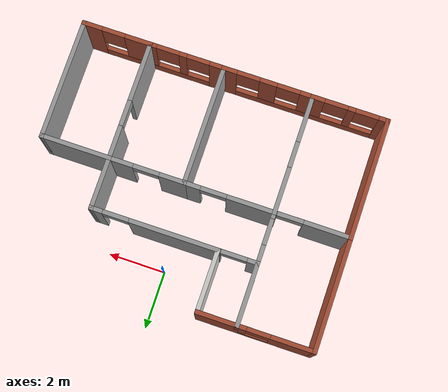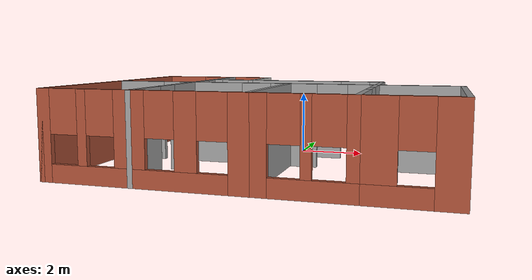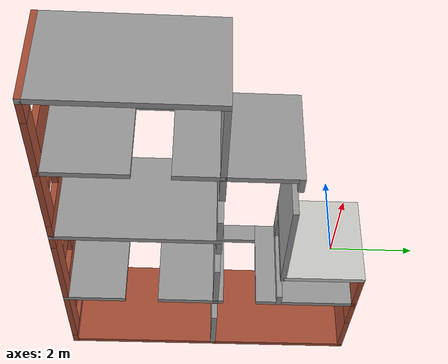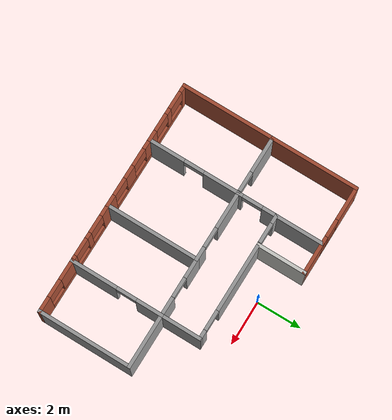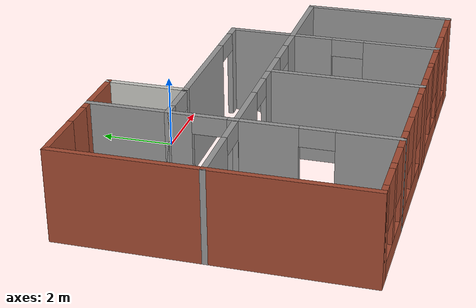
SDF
<?xml version='1.0'?>
<sdf version='1.6'>
  <model name='appartment'>
    <pose frame=''>-0.212064 -2.89317 0 0 -0 0</pose>
    <link name='Wall_0'>
      <collision name='Wall_0_Collision'>
        <geometry>
          <box>
            <size>4.25 0.15 2.5</size>
          </box>
        </geometry>
        <pose frame=''>0 0 1.25 0 -0 0</pose>
      </collision>
      <visual name='Wall_0_Visual'>
        <pose frame=''>0 0 1.25 0 -0 0</pose>
        <geometry>
          <box>
            <size>4.25 0.15 2.5</size>
          </box>
        </geometry>
        <material>
          <script>
            <uri>file://media/materials/scripts/gazebo.material</uri>
            <name>Gazebo/Bricks</name>
          </script>
          <ambient>1 1 1 1</ambient>
        </material>
        <meta>
          <layer>0</layer>
        </meta>
      </visual>
      <pose frame=''>-5.325 -1.925 0 0 0 -1.5708</pose>
    </link>
    <link name='Wall_1'>
      <pose frame=''>-4.025 -3.975 0 0 -0 0</pose>
      <visual name='Wall_1_Visual_0'>
        <pose frame=''>-1.18356 0 1.25 0 -0 0</pose>
        <geometry>
          <box>
            <size>0.382875 0.15 2.5</size>
          </box>
        </geometry>
        <material>
          <script>
            <uri>file://media/materials/scripts/gazebo.material</uri>
            <name>Gazebo/Bricks</name>
          </script>
          <ambient>1 1 1 1</ambient>
        </material>
        <meta>
          <layer>0</layer>
        </meta>
      </visual>
      <collision name='Wall_1_Collision_0'>
        <geometry>
          <box>
            <size>0.382875 0.15 2.5</size>
          </box>
        </geometry>
        <pose frame=''>-1.18356 0 1.25 0 -0 0</pose>
      </collision>
      <visual name='Wall_1_Visual_1'>
        <pose frame=''>0.191437 0 0.25 0 -0 0</pose>
        <geometry>
          <box>
            <size>2.36713 0.15 0.5</size>
          </box>
        </geometry>
        <material>
          <script>
            <uri>file://media/materials/scripts/gazebo.material</uri>
            <name>Gazebo/Bricks</name>
          </script>
          <ambient>1 1 1 1</ambient>
        </material>
        <meta>
          <layer>0</layer>
        </meta>
      </visual>
      <collision name='Wall_1_Collision_1'>
        <geometry>
          <box>
            <size>2.36713 0.15 0.5</size>
          </box>
        </geometry>
        <pose frame=''>0.191437 0 0.25 0 -0 0</pose>
      </collision>
      <visual name='Wall_1_Visual_2'>
        <pose frame=''>-0.058679 0 1.5 0 -0 0</pose>
        <geometry>
          <box>
            <size>0.266894 0.15 2</size>
          </box>
        </geometry>
        <material>
          <script>
            <uri>file://media/materials/scripts/gazebo.material</uri>
            <name>Gazebo/Bricks</name>
          </script>
          <ambient>1 1 1 1</ambient>
        </material>
        <meta>
          <layer>0</layer>
        </meta>
      </visual>
      <collision name='Wall_1_Collision_2'>
        <geometry>
          <box>
            <size>0.266894 0.15 2</size>
          </box>
        </geometry>
        <pose frame=''>-0.058679 0 1.5 0 -0 0</pose>
      </collision>
      <visual name='Wall_1_Visual_3'>
        <pose frame=''>1.12488 0 1.5 0 -0 0</pose>
        <geometry>
          <box>
            <size>0.500232 0.15 2</size>
          </box>
        </geometry>
        <material>
          <script>
            <uri>file://media/materials/scripts/gazebo.material</uri>
            <name>Gazebo/Bricks</name>
          </script>
          <ambient>1 1 1 1</ambient>
        </material>
        <meta>
          <layer>0</layer>
        </meta>
      </visual>
      <collision name='Wall_1_Collision_3'>
        <geometry>
          <box>
            <size>0.500232 0.15 2</size>
          </box>
        </geometry>
        <pose frame=''>1.12488 0 1.5 0 -0 0</pose>
      </collision>
      <visual name='Wall_1_Visual_4'>
        <pose frame=''>-0.592125 0 1.9 0 -0 0</pose>
        <geometry>
          <box>
            <size>0.8 0.15 1.2</size>
          </box>
        </geometry>
        <material>
          <script>
            <uri>file://media/materials/scripts/gazebo.material</uri>
            <name>Gazebo/Bricks</name>
          </script>
          <ambient>1 1 1 1</ambient>
        </material>
        <meta>
          <layer>0</layer>
        </meta>
      </visual>
      <collision name='Wall_1_Collision_4'>
        <geometry>
          <box>
            <size>0.8 0.15 1.2</size>
          </box>
        </geometry>
        <pose frame=''>-0.592125 0 1.9 0 -0 0</pose>
      </collision>
      <visual name='Wall_1_Visual_5'>
        <pose frame=''>0.474768 0 1.9 0 -0 0</pose>
        <geometry>
          <box>
            <size>0.8 0.15 1.2</size>
          </box>
        </geometry>
        <material>
          <script>
            <uri>file://media/materials/scripts/gazebo.material</uri>
            <name>Gazebo/Bricks</name>
          </script>
          <ambient>1 1 1 1</ambient>
        </material>
        <meta>
          <layer>0</layer>
        </meta>
      </visual>
      <collision name='Wall_1_Collision_5'>
        <geometry>
          <box>
            <size>0.8 0.15 1.2</size>
          </box>
        </geometry>
        <pose frame=''>0.474768 0 1.9 0 -0 0</pose>
      </collision>
    </link>
    <link name='Wall_11'>
      <pose frame=''>1.675 -3.975 0 0 -0 0</pose>
      <visual name='Wall_11_Visual_0'>
        <pose frame=''>-1.08649 0 1.25 0 -0 0</pose>
        <geometry>
          <box>
            <size>0.577026 0.15 2.5</size>
          </box>
        </geometry>
        <material>
          <script>
            <uri>file://media/materials/scripts/gazebo.material</uri>
            <name>Gazebo/Bricks</name>
          </script>
          <ambient>1 1 1 1</ambient>
        </material>
        <meta>
          <layer>0</layer>
        </meta>
      </visual>
      <collision name='Wall_11_Collision_0'>
        <geometry>
          <box>
            <size>0.577026 0.15 2.5</size>
          </box>
        </geometry>
        <pose frame=''>-1.08649 0 1.25 0 -0 0</pose>
      </collision>
      <visual name='Wall_11_Visual_1'>
        <pose frame=''>0.288513 0 0.25 0 -0 0</pose>
        <geometry>
          <box>
            <size>2.17297 0.15 0.5</size>
          </box>
        </geometry>
        <material>
          <script>
            <uri>file://media/materials/scripts/gazebo.material</uri>
            <name>Gazebo/Bricks</name>
          </script>
          <ambient>1 1 1 1</ambient>
        </material>
        <meta>
          <layer>0</layer>
        </meta>
      </visual>
      <collision name='Wall_11_Collision_1'>
        <geometry>
          <box>
            <size>2.17297 0.15 0.5</size>
          </box>
        </geometry>
        <pose frame=''>0.288513 0 0.25 0 -0 0</pose>
      </collision>
      <visual name='Wall_11_Visual_2'>
        <pose frame=''>0.135473 0 1.5 0 -0 0</pose>
        <geometry>
          <box>
            <size>0.266894 0.15 2</size>
          </box>
        </geometry>
        <material>
          <script>
            <uri>file://media/materials/scripts/gazebo.material</uri>
            <name>Gazebo/Bricks</name>
          </script>
          <ambient>1 1 1 1</ambient>
        </material>
        <meta>
          <layer>0</layer>
        </meta>
      </visual>
      <collision name='Wall_11_Collision_2'>
        <geometry>
          <box>
            <size>0.266894 0.15 2</size>
          </box>
        </geometry>
        <pose frame=''>0.135473 0 1.5 0 -0 0</pose>
      </collision>
      <visual name='Wall_11_Visual_3'>
        <pose frame=''>1.22196 0 1.5 0 -0 0</pose>
        <geometry>
          <box>
            <size>0.306081 0.15 2</size>
          </box>
        </geometry>
        <material>
          <script>
            <uri>file://media/materials/scripts/gazebo.material</uri>
            <name>Gazebo/Bricks</name>
          </script>
          <ambient>1 1 1 1</ambient>
        </material>
        <meta>
          <layer>0</layer>
        </meta>
      </visual>
      <collision name='Wall_11_Collision_3'>
        <geometry>
          <box>
            <size>0.306081 0.15 2</size>
          </box>
        </geometry>
        <pose frame=''>1.22196 0 1.5 0 -0 0</pose>
      </collision>
      <visual name='Wall_11_Visual_4'>
        <pose frame=''>-0.397974 0 1.9 0 -0 0</pose>
        <geometry>
          <box>
            <size>0.8 0.15 1.2</size>
          </box>
        </geometry>
        <material>
          <script>
            <uri>file://media/materials/scripts/gazebo.material</uri>
            <name>Gazebo/Bricks</name>
          </script>
          <ambient>1 1 1 1</ambient>
        </material>
        <meta>
          <layer>0</layer>
        </meta>
      </visual>
      <collision name='Wall_11_Collision_4'>
        <geometry>
          <box>
            <size>0.8 0.15 1.2</size>
          </box>
        </geometry>
        <pose frame=''>-0.397974 0 1.9 0 -0 0</pose>
      </collision>
      <visual name='Wall_11_Visual_5'>
        <pose frame=''>0.668919 0 1.9 0 -0 0</pose>
        <geometry>
          <box>
            <size>0.8 0.15 1.2</size>
          </box>
        </geometry>
        <material>
          <script>
            <uri>file://media/materials/scripts/gazebo.material</uri>
            <name>Gazebo/Bricks</name>
          </script>
          <ambient>1 1 1 1</ambient>
        </material>
        <meta>
          <layer>0</layer>
        </meta>
      </visual>
      <collision name='Wall_11_Collision_5'>
        <geometry>
          <box>
            <size>0.8 0.15 1.2</size>
          </box>
        </geometry>
        <pose frame=''>0.668919 0 1.9 0 -0 0</pose>
      </collision>
    </link>
    <link name='Wall_13'>
      <pose frame=''>2.975 -1.925 0 0 -0 1.5708</pose>
      <visual name='Wall_13_Visual_0'>
        <pose frame=''>-1.06041 0 1.25 0 -0 0</pose>
        <geometry>
          <box>
            <size>2.12917 0.15 2.5</size>
          </box>
        </geometry>
        <material>
          <script>
            <uri>file://media/materials/scripts/gazebo.material</uri>
            <name>Gazebo/Grey</name>
          </script>
          <ambient>1 1 1 1</ambient>
        </material>
        <meta>
          <layer>0</layer>
        </meta>
      </visual>
      <collision name='Wall_13_Collision_0'>
        <geometry>
          <box>
            <size>2.12917 0.15 2.5</size>
          </box>
        </geometry>
        <pose frame=''>-1.06041 0 1.25 0 -0 0</pose>
      </collision>
      <visual name='Wall_13_Visual_1'>
        <pose frame=''>1.51459 0 1.25 0 -0 0</pose>
        <geometry>
          <box>
            <size>1.22083 0.15 2.5</size>
          </box>
        </geometry>
        <material>
          <script>
            <uri>file://media/materials/scripts/gazebo.material</uri>
            <name>Gazebo/Grey</name>
          </script>
          <ambient>1 1 1 1</ambient>
        </material>
        <meta>
          <layer>0</layer>
        </meta>
      </visual>
      <collision name='Wall_13_Collision_1'>
        <geometry>
          <box>
            <size>1.22083 0.15 2.5</size>
          </box>
        </geometry>
        <pose frame=''>1.51459 0 1.25 0 -0 0</pose>
      </collision>
      <visual name='Wall_13_Visual_2'>
        <pose frame=''>0.454172 0 2.25 0 -0 0</pose>
        <geometry>
          <box>
            <size>0.9 0.15 0.5</size>
          </box>
        </geometry>
        <material>
          <script>
            <uri>file://media/materials/scripts/gazebo.material</uri>
            <name>Gazebo/Grey</name>
          </script>
          <ambient>1 1 1 1</ambient>
        </material>
        <meta>
          <layer>0</layer>
        </meta>
      </visual>
      <collision name='Wall_13_Collision_2'>
        <geometry>
          <box>
            <size>0.9 0.15 0.5</size>
          </box>
        </geometry>
        <pose frame=''>0.454172 0 2.25 0 -0 0</pose>
      </collision>
    </link>
    <link name='Wall_14'>
      <pose frame=''>1.675 0.125 0 0 -0 3.14159</pose>
      <visual name='Wall_14_Visual_0'>
        <pose frame=''>-0.921019 0 1.25 0 -0 0</pose>
        <geometry>
          <box>
            <size>0.907962 0.15 2.5</size>
          </box>
        </geometry>
        <material>
          <script>
            <uri>file://media/materials/scripts/gazebo.material</uri>
            <name>Gazebo/Grey</name>
          </script>
          <ambient>1 1 1 1</ambient>
        </material>
        <meta>
          <layer>0</layer>
        </meta>
      </visual>
      <collision name='Wall_14_Collision_0'>
        <geometry>
          <box>
            <size>0.907962 0.15 2.5</size>
          </box>
        </geometry>
        <pose frame=''>-0.921019 0 1.25 0 -0 0</pose>
      </collision>
      <visual name='Wall_14_Visual_1'>
        <pose frame=''>0.903981 0 1.25 0 -0 0</pose>
        <geometry>
          <box>
            <size>0.942038 0.15 2.5</size>
          </box>
        </geometry>
        <material>
          <script>
            <uri>file://media/materials/scripts/gazebo.material</uri>
            <name>Gazebo/Grey</name>
          </script>
          <ambient>1 1 1 1</ambient>
        </material>
        <meta>
          <layer>0</layer>
        </meta>
      </visual>
      <collision name='Wall_14_Collision_1'>
        <geometry>
          <box>
            <size>0.942038 0.15 2.5</size>
          </box>
        </geometry>
        <pose frame=''>0.903981 0 1.25 0 -0 0</pose>
      </collision>
      <visual name='Wall_14_Visual_2'>
        <pose frame=''>-0.017038 0 2.25 0 -0 0</pose>
        <geometry>
          <box>
            <size>0.9 0.15 0.5</size>
          </box>
        </geometry>
        <material>
          <script>
            <uri>file://media/materials/scripts/gazebo.material</uri>
            <name>Gazebo/Grey</name>
          </script>
          <ambient>1 1 1 1</ambient>
        </material>
        <meta>
          <layer>0</layer>
        </meta>
      </visual>
      <collision name='Wall_14_Collision_2'>
        <geometry>
          <box>
            <size>0.9 0.15 0.5</size>
          </box>
        </geometry>
        <pose frame=''>-0.017038 0 2.25 0 -0 0</pose>
      </collision>
    </link>
    <link name='Wall_16'>
      <collision name='Wall_16_Collision'>
        <geometry>
          <box>
            <size>2.5 0.15 2.5</size>
          </box>
        </geometry>
        <pose frame=''>0 0 1.25 0 -0 0</pose>
      </collision>
      <visual name='Wall_16_Visual'>
        <pose frame=''>0 0 1.25 0 -0 0</pose>
        <geometry>
          <box>
            <size>2.5 0.15 2.5</size>
          </box>
        </geometry>
        <material>
          <script>
            <uri>file://media/materials/scripts/gazebo.material</uri>
            <name>Gazebo/Grey</name>
          </script>
          <ambient>1 1 1 1</ambient>
        </material>
        <meta>
          <layer>0</layer>
        </meta>
      </visual>
      <pose frame=''>4.15 0.125 0 0 -0 0</pose>
    </link>
    <link name='Wall_17'>
      <collision name='Wall_17_Collision'>
        <geometry>
          <box>
            <size>4.25 0.15 2.5</size>
          </box>
        </geometry>
        <pose frame=''>0 0 1.25 0 -0 0</pose>
      </collision>
      <visual name='Wall_17_Visual'>
        <pose frame=''>0 0 1.25 0 -0 0</pose>
        <geometry>
          <box>
            <size>4.25 0.15 2.5</size>
          </box>
        </geometry>
        <material>
          <script>
            <uri>file://media/materials/scripts/gazebo.material</uri>
            <name>Gazebo/Grey</name>
          </script>
          <ambient>1 1 1 1</ambient>
        </material>
        <meta>
          <layer>0</layer>
        </meta>
      </visual>
      <pose frame=''>5.325 -1.925 0 0 0 -1.5708</pose>
    </link>
    <link name='Wall_18'>
      <pose frame=''>4.15 -3.975 0 0 -0 3.14159</pose>
      <visual name='Wall_18_Visual_0'>
        <pose frame=''>-0.883913 0 1.25 0 -0 0</pose>
        <geometry>
          <box>
            <size>0.732174 0.15 2.5</size>
          </box>
        </geometry>
        <material>
          <script>
            <uri>file://media/materials/scripts/gazebo.material</uri>
            <name>Gazebo/Bricks</name>
          </script>
          <ambient>1 1 1 1</ambient>
        </material>
        <meta>
          <layer>0</layer>
        </meta>
      </visual>
      <collision name='Wall_18_Collision_0'>
        <geometry>
          <box>
            <size>0.732174 0.15 2.5</size>
          </box>
        </geometry>
        <pose frame=''>-0.883913 0 1.25 0 -0 0</pose>
      </collision>
      <visual name='Wall_18_Visual_1'>
        <pose frame=''>0.366087 0 0.25 0 -0 0</pose>
        <geometry>
          <box>
            <size>1.76783 0.15 0.5</size>
          </box>
        </geometry>
        <material>
          <script>
            <uri>file://media/materials/scripts/gazebo.material</uri>
            <name>Gazebo/Bricks</name>
          </script>
          <ambient>1 1 1 1</ambient>
        </material>
        <meta>
          <layer>0</layer>
        </meta>
      </visual>
      <collision name='Wall_18_Collision_1'>
        <geometry>
          <box>
            <size>1.76783 0.15 0.5</size>
          </box>
        </geometry>
        <pose frame=''>0.366087 0 0.25 0 -0 0</pose>
      </collision>
      <visual name='Wall_18_Visual_2'>
        <pose frame=''>0.766087 0 1.5 0 -0 0</pose>
        <geometry>
          <box>
            <size>0.967826 0.15 2</size>
          </box>
        </geometry>
        <material>
          <script>
            <uri>file://media/materials/scripts/gazebo.material</uri>
            <name>Gazebo/Bricks</name>
          </script>
          <ambient>1 1 1 1</ambient>
        </material>
        <meta>
          <layer>0</layer>
        </meta>
      </visual>
      <collision name='Wall_18_Collision_2'>
        <geometry>
          <box>
            <size>0.967826 0.15 2</size>
          </box>
        </geometry>
        <pose frame=''>0.766087 0 1.5 0 -0 0</pose>
      </collision>
      <visual name='Wall_18_Visual_3'>
        <pose frame=''>-0.117826 0 1.9 0 -0 0</pose>
        <geometry>
          <box>
            <size>0.8 0.15 1.2</size>
          </box>
        </geometry>
        <material>
          <script>
            <uri>file://media/materials/scripts/gazebo.material</uri>
            <name>Gazebo/Bricks</name>
          </script>
          <ambient>1 1 1 1</ambient>
        </material>
        <meta>
          <layer>0</layer>
        </meta>
      </visual>
      <collision name='Wall_18_Collision_3'>
        <geometry>
          <box>
            <size>0.8 0.15 1.2</size>
          </box>
        </geometry>
        <pose frame=''>-0.117826 0 1.9 0 -0 0</pose>
      </collision>
    </link>
    <link name='Wall_2'>
      <pose frame=''>-2.725 -1.925 0 0 -0 1.5708</pose>
      <visual name='Wall_2_Visual_0'>
        <pose frame=''>-1.27862 0 1.25 0 -0 0</pose>
        <geometry>
          <box>
            <size>1.69277 0.15 2.5</size>
          </box>
        </geometry>
        <material>
          <script>
            <uri>file://media/materials/scripts/gazebo.material</uri>
            <name>Gazebo/Grey</name>
          </script>
          <ambient>1 1 1 1</ambient>
        </material>
        <meta>
          <layer>0</layer>
        </meta>
      </visual>
      <collision name='Wall_2_Collision_0'>
        <geometry>
          <box>
            <size>1.69277 0.15 2.5</size>
          </box>
        </geometry>
        <pose frame=''>-1.27862 0 1.25 0 -0 0</pose>
      </collision>
      <visual name='Wall_2_Visual_1'>
        <pose frame=''>1.29638 0 1.25 0 -0 0</pose>
        <geometry>
          <box>
            <size>1.65723 0.15 2.5</size>
          </box>
        </geometry>
        <material>
          <script>
            <uri>file://media/materials/scripts/gazebo.material</uri>
            <name>Gazebo/Grey</name>
          </script>
          <ambient>1 1 1 1</ambient>
        </material>
        <meta>
          <layer>0</layer>
        </meta>
      </visual>
      <collision name='Wall_2_Collision_1'>
        <geometry>
          <box>
            <size>1.65723 0.15 2.5</size>
          </box>
        </geometry>
        <pose frame=''>1.29638 0 1.25 0 -0 0</pose>
      </collision>
      <visual name='Wall_2_Visual_2'>
        <pose frame=''>0.017769 0 2.25 0 -0 0</pose>
        <geometry>
          <box>
            <size>0.9 0.15 0.5</size>
          </box>
        </geometry>
        <material>
          <script>
            <uri>file://media/materials/scripts/gazebo.material</uri>
            <name>Gazebo/Grey</name>
          </script>
          <ambient>1 1 1 1</ambient>
        </material>
        <meta>
          <layer>0</layer>
        </meta>
      </visual>
      <collision name='Wall_2_Collision_2'>
        <geometry>
          <box>
            <size>0.9 0.15 0.5</size>
          </box>
        </geometry>
        <pose frame=''>0.017769 0 2.25 0 -0 0</pose>
      </collision>
    </link>
    <link name='Wall_20'>
      <collision name='Wall_20_Collision'>
        <geometry>
          <box>
            <size>1.5 0.15 2.5</size>
          </box>
        </geometry>
        <pose frame=''>0 0 1.25 0 -0 0</pose>
      </collision>
      <visual name='Wall_20_Visual'>
        <pose frame=''>0 0 1.25 0 -0 0</pose>
        <geometry>
          <box>
            <size>1.5 0.15 2.5</size>
          </box>
        </geometry>
        <material>
          <script>
            <uri>file://media/materials/scripts/gazebo.material</uri>
            <name>Gazebo/Bricks</name>
          </script>
          <ambient>1 1 1 1</ambient>
        </material>
        <meta>
          <layer>0</layer>
        </meta>
      </visual>
      <pose frame=''>-2.05 3.975 0 0 -0 0</pose>
    </link>
    <link name='Wall_21'>
      <collision name='Wall_21_Collision'>
        <geometry>
          <box>
            <size>2.25 0.15 2.5</size>
          </box>
        </geometry>
        <pose frame=''>0 0 1.25 0 -0 0</pose>
      </collision>
      <visual name='Wall_21_Visual'>
        <pose frame=''>0 0 1.25 0 -0 0</pose>
        <geometry>
          <box>
            <size>2.25 0.15 2.5</size>
          </box>
        </geometry>
        <material>
          <script>
            <uri>file://media/materials/scripts/gazebo.material</uri>
            <name>Gazebo/CeilingTiled</name>
          </script>
          <ambient>1 1 1 1</ambient>
        </material>
        <meta>
          <layer>0</layer>
        </meta>
      </visual>
      <pose frame=''>-1.375 2.925 0 0 0 -1.5708</pose>
    </link>
    <link name='Wall_28'>
      <pose frame=''>0.8 1.875 0 0 -0 0</pose>
      <visual name='Wall_28_Visual_0'>
        <pose frame=''>-0.685769 0 1.25 0 -0 0</pose>
        <geometry>
          <box>
            <size>3.12846 0.15 2.5</size>
          </box>
        </geometry>
        <material>
          <script>
            <uri>file://media/materials/scripts/gazebo.material</uri>
            <name>Gazebo/Grey</name>
          </script>
          <ambient>1 1 1 1</ambient>
        </material>
        <meta>
          <layer>0</layer>
        </meta>
      </visual>
      <collision name='Wall_28_Collision_0'>
        <geometry>
          <box>
            <size>3.12846 0.15 2.5</size>
          </box>
        </geometry>
        <pose frame=''>-0.685769 0 1.25 0 -0 0</pose>
      </collision>
      <visual name='Wall_28_Visual_1'>
        <pose frame=''>2.01423 0 1.25 0 -0 0</pose>
        <geometry>
          <box>
            <size>0.471537 0.15 2.5</size>
          </box>
        </geometry>
        <material>
          <script>
            <uri>file://media/materials/scripts/gazebo.material</uri>
            <name>Gazebo/Grey</name>
          </script>
          <ambient>1 1 1 1</ambient>
        </material>
        <meta>
          <layer>0</layer>
        </meta>
      </visual>
      <collision name='Wall_28_Collision_1'>
        <geometry>
          <box>
            <size>0.471537 0.15 2.5</size>
          </box>
        </geometry>
        <pose frame=''>2.01423 0 1.25 0 -0 0</pose>
      </collision>
      <visual name='Wall_28_Visual_2'>
        <pose frame=''>1.32846 0 2.25 0 -0 0</pose>
        <geometry>
          <box>
            <size>0.9 0.15 0.5</size>
          </box>
        </geometry>
        <material>
          <script>
            <uri>file://media/materials/scripts/gazebo.material</uri>
            <name>Gazebo/Grey</name>
          </script>
          <ambient>1 1 1 1</ambient>
        </material>
        <meta>
          <layer>0</layer>
        </meta>
      </visual>
      <collision name='Wall_28_Collision_2'>
        <geometry>
          <box>
            <size>0.9 0.15 0.5</size>
          </box>
        </geometry>
        <pose frame=''>1.32846 0 2.25 0 -0 0</pose>
      </collision>
    </link>
    <link name='Wall_29'>
      <collision name='Wall_29_Collision'>
        <geometry>
          <box>
            <size>1.9 0.15 2.5</size>
          </box>
        </geometry>
        <pose frame=''>0 0 1.25 0 -0 0</pose>
      </collision>
      <visual name='Wall_29_Visual'>
        <pose frame=''>0 0 1.25 0 -0 0</pose>
        <geometry>
          <box>
            <size>1.9 0.15 2.5</size>
          </box>
        </geometry>
        <material>
          <script>
            <uri>file://media/materials/scripts/gazebo.material</uri>
            <name>Gazebo/Grey</name>
          </script>
          <ambient>1 1 1 1</ambient>
        </material>
        <meta>
          <layer>0</layer>
        </meta>
      </visual>
      <pose frame=''>2.975 1 0 0 0 -1.5708</pose>
    </link>
    <link name='Wall_3'>
      <pose frame=''>-4.025 0.125 0 0 -0 3.14159</pose>
      <visual name='Wall_3_Visual_0'>
        <pose frame=''>-1.29133 0 1.25 0 -0 0</pose>
        <geometry>
          <box>
            <size>0.167337 0.15 2.5</size>
          </box>
        </geometry>
        <material>
          <script>
            <uri>file://media/materials/scripts/gazebo.material</uri>
            <name>Gazebo/Grey</name>
          </script>
          <ambient>1 1 1 1</ambient>
        </material>
        <meta>
          <layer>0</layer>
        </meta>
      </visual>
      <collision name='Wall_3_Collision_0'>
        <geometry>
          <box>
            <size>0.167337 0.15 2.5</size>
          </box>
        </geometry>
        <pose frame=''>-1.29133 0 1.25 0 -0 0</pose>
      </collision>
      <visual name='Wall_3_Visual_1'>
        <pose frame=''>0.533669 0 1.25 0 -0 0</pose>
        <geometry>
          <box>
            <size>1.68266 0.15 2.5</size>
          </box>
        </geometry>
        <material>
          <script>
            <uri>file://media/materials/scripts/gazebo.material</uri>
            <name>Gazebo/Grey</name>
          </script>
          <ambient>1 1 1 1</ambient>
        </material>
        <meta>
          <layer>0</layer>
        </meta>
      </visual>
      <collision name='Wall_3_Collision_1'>
        <geometry>
          <box>
            <size>1.68266 0.15 2.5</size>
          </box>
        </geometry>
        <pose frame=''>0.533669 0 1.25 0 -0 0</pose>
      </collision>
      <visual name='Wall_3_Visual_2'>
        <pose frame=''>-0.757663 0 2.25 0 -0 0</pose>
        <geometry>
          <box>
            <size>0.9 0.15 0.5</size>
          </box>
        </geometry>
        <material>
          <script>
            <uri>file://media/materials/scripts/gazebo.material</uri>
            <name>Gazebo/Grey</name>
          </script>
          <ambient>1 1 1 1</ambient>
        </material>
        <meta>
          <layer>0</layer>
        </meta>
      </visual>
      <collision name='Wall_3_Collision_2'>
        <geometry>
          <box>
            <size>0.9 0.15 0.5</size>
          </box>
        </geometry>
        <pose frame=''>-0.757663 0 2.25 0 -0 0</pose>
      </collision>
    </link>
    <link name='Wall_31'>
      <pose frame=''>-2.05 1.875 0 0 -0 3.14159</pose>
      <visual name='Wall_31_Visual_0'>
        <pose frame=''>-0.663172 0 1.25 0 -0 0</pose>
        <geometry>
          <box>
            <size>0.173656 0.15 2.5</size>
          </box>
        </geometry>
        <material>
          <script>
            <uri>file://media/materials/scripts/gazebo.material</uri>
            <name>Gazebo/Grey</name>
          </script>
          <ambient>1 1 1 1</ambient>
        </material>
        <meta>
          <layer>0</layer>
        </meta>
      </visual>
      <collision name='Wall_31_Collision_0'>
        <geometry>
          <box>
            <size>0.173656 0.15 2.5</size>
          </box>
        </geometry>
        <pose frame=''>-0.663172 0 1.25 0 -0 0</pose>
      </collision>
      <visual name='Wall_31_Visual_1'>
        <pose frame=''>0.536828 0 1.25 0 -0 0</pose>
        <geometry>
          <box>
            <size>0.426344 0.15 2.5</size>
          </box>
        </geometry>
        <material>
          <script>
            <uri>file://media/materials/scripts/gazebo.material</uri>
            <name>Gazebo/Grey</name>
          </script>
          <ambient>1 1 1 1</ambient>
        </material>
        <meta>
          <layer>0</layer>
        </meta>
      </visual>
      <collision name='Wall_31_Collision_1'>
        <geometry>
          <box>
            <size>0.426344 0.15 2.5</size>
          </box>
        </geometry>
        <pose frame=''>0.536828 0 1.25 0 -0 0</pose>
      </collision>
      <visual name='Wall_31_Visual_2'>
        <pose frame=''>-0.126344 0 2.25 0 -0 0</pose>
        <geometry>
          <box>
            <size>0.9 0.15 0.5</size>
          </box>
        </geometry>
        <material>
          <script>
            <uri>file://media/materials/scripts/gazebo.material</uri>
            <name>Gazebo/Grey</name>
          </script>
          <ambient>1 1 1 1</ambient>
        </material>
        <meta>
          <layer>0</layer>
        </meta>
      </visual>
      <collision name='Wall_31_Collision_2'>
        <geometry>
          <box>
            <size>0.9 0.15 0.5</size>
          </box>
        </geometry>
        <pose frame=''>-0.126344 0 2.25 0 -0 0</pose>
      </collision>
    </link>
    <link name='Wall_4'>
      <collision name='Wall_4_Collision'>
        <geometry>
          <box>
            <size>4 0.15 2.5</size>
          </box>
        </geometry>
        <pose frame=''>0 0 1.25 0 -0 0</pose>
      </collision>
      <visual name='Wall_4_Visual'>
        <pose frame=''>0 0 1.25 0 -0 0</pose>
        <geometry>
          <box>
            <size>4 0.15 2.5</size>
          </box>
        </geometry>
        <material>
          <script>
            <uri>file://media/materials/scripts/gazebo.material</uri>
            <name>Gazebo/Bricks</name>
          </script>
          <ambient>1 1 1 1</ambient>
        </material>
        <meta>
          <layer>0</layer>
        </meta>
      </visual>
      <pose frame=''>-5.325 2.05 0 0 -0 1.5708</pose>
    </link>
    <link name='Wall_5'>
      <pose frame=''>-4.025 3.975 0 0 -0 0</pose>
      <visual name='Wall_5_Visual_0'>
        <pose frame=''>-0.597646 0 1.25 0 -0 0</pose>
        <geometry>
          <box>
            <size>1.55471 0.15 2.5</size>
          </box>
        </geometry>
        <material>
          <script>
            <uri>file://media/materials/scripts/gazebo.material</uri>
            <name>Gazebo/Bricks</name>
          </script>
          <ambient>1 1 1 1</ambient>
        </material>
        <meta>
          <layer>0</layer>
        </meta>
      </visual>
      <collision name='Wall_5_Collision_0'>
        <geometry>
          <box>
            <size>1.55471 0.15 2.5</size>
          </box>
        </geometry>
        <pose frame=''>-0.597646 0 1.25 0 -0 0</pose>
      </collision>
      <visual name='Wall_5_Visual_1'>
        <pose frame=''>0.777354 0 0.25 0 -0 0</pose>
        <geometry>
          <box>
            <size>1.19529 0.15 0.5</size>
          </box>
        </geometry>
        <material>
          <script>
            <uri>file://media/materials/scripts/gazebo.material</uri>
            <name>Gazebo/Bricks</name>
          </script>
          <ambient>1 1 1 1</ambient>
        </material>
        <meta>
          <layer>0</layer>
        </meta>
      </visual>
      <collision name='Wall_5_Collision_1'>
        <geometry>
          <box>
            <size>1.19529 0.15 0.5</size>
          </box>
        </geometry>
        <pose frame=''>0.777354 0 0.25 0 -0 0</pose>
      </collision>
      <visual name='Wall_5_Visual_2'>
        <pose frame=''>1.17735 0 1.5 0 -0 0</pose>
        <geometry>
          <box>
            <size>0.395291 0.15 2</size>
          </box>
        </geometry>
        <material>
          <script>
            <uri>file://media/materials/scripts/gazebo.material</uri>
            <name>Gazebo/Bricks</name>
          </script>
          <ambient>1 1 1 1</ambient>
        </material>
        <meta>
          <layer>0</layer>
        </meta>
      </visual>
      <collision name='Wall_5_Collision_2'>
        <geometry>
          <box>
            <size>0.395291 0.15 2</size>
          </box>
        </geometry>
        <pose frame=''>1.17735 0 1.5 0 -0 0</pose>
      </collision>
      <visual name='Wall_5_Visual_3'>
        <pose frame=''>0.579709 0 1.9 0 -0 0</pose>
        <geometry>
          <box>
            <size>0.8 0.15 1.2</size>
          </box>
        </geometry>
        <material>
          <script>
            <uri>file://media/materials/scripts/gazebo.material</uri>
            <name>Gazebo/Bricks</name>
          </script>
          <ambient>1 1 1 1</ambient>
        </material>
        <meta>
          <layer>0</layer>
        </meta>
      </visual>
      <collision name='Wall_5_Collision_3'>
        <geometry>
          <box>
            <size>0.8 0.15 1.2</size>
          </box>
        </geometry>
        <pose frame=''>0.579709 0 1.9 0 -0 0</pose>
      </collision>
    </link>
    <link name='Wall_6'>
      <pose frame=''>-2.725 2.05 0 0 0 -1.5708</pose>
      <visual name='Wall_6_Visual_0'>
        <pose frame=''>-0.595334 0 1.25 0 -0 0</pose>
        <geometry>
          <box>
            <size>2.80933 0.15 2.5</size>
          </box>
        </geometry>
        <material>
          <script>
            <uri>file://media/materials/scripts/gazebo.material</uri>
            <name>Gazebo/Grey</name>
          </script>
          <ambient>1 1 1 1</ambient>
        </material>
        <meta>
          <layer>0</layer>
        </meta>
      </visual>
      <collision name='Wall_6_Collision_0'>
        <geometry>
          <box>
            <size>2.80933 0.15 2.5</size>
          </box>
        </geometry>
        <pose frame=''>-0.595334 0 1.25 0 -0 0</pose>
      </collision>
      <visual name='Wall_6_Visual_1'>
        <pose frame=''>1.85467 0 1.25 0 -0 0</pose>
        <geometry>
          <box>
            <size>0.290669 0.15 2.5</size>
          </box>
        </geometry>
        <material>
          <script>
            <uri>file://media/materials/scripts/gazebo.material</uri>
            <name>Gazebo/Grey</name>
          </script>
          <ambient>1 1 1 1</ambient>
        </material>
        <meta>
          <layer>0</layer>
        </meta>
      </visual>
      <collision name='Wall_6_Collision_1'>
        <geometry>
          <box>
            <size>0.290669 0.15 2.5</size>
          </box>
        </geometry>
        <pose frame=''>1.85467 0 1.25 0 -0 0</pose>
      </collision>
      <visual name='Wall_6_Visual_2'>
        <pose frame=''>1.25933 0 2.25 0 -0 0</pose>
        <geometry>
          <box>
            <size>0.9 0.15 0.5</size>
          </box>
        </geometry>
        <material>
          <script>
            <uri>file://media/materials/scripts/gazebo.material</uri>
            <name>Gazebo/Grey</name>
          </script>
          <ambient>1 1 1 1</ambient>
        </material>
        <meta>
          <layer>0</layer>
        </meta>
      </visual>
      <collision name='Wall_6_Collision_2'>
        <geometry>
          <box>
            <size>0.9 0.15 0.5</size>
          </box>
        </geometry>
        <pose frame=''>1.25933 0 2.25 0 -0 0</pose>
      </collision>
    </link>
    <link name='Wall_7'>
      <pose frame=''>-1.175 0.125 0 0 -0 0</pose>
      <visual name='Wall_7_Visual_0'>
        <pose frame=''>-0.767781 0 1.25 0 -0 0</pose>
        <geometry>
          <box>
            <size>1.71444 0.15 2.5</size>
          </box>
        </geometry>
        <material>
          <script>
            <uri>file://media/materials/scripts/gazebo.material</uri>
            <name>Gazebo/Grey</name>
          </script>
          <ambient>1 1 1 1</ambient>
        </material>
        <meta>
          <layer>0</layer>
        </meta>
      </visual>
      <collision name='Wall_7_Collision_0'>
        <geometry>
          <box>
            <size>1.71444 0.15 2.5</size>
          </box>
        </geometry>
        <pose frame=''>-0.767781 0 1.25 0 -0 0</pose>
      </collision>
      <visual name='Wall_7_Visual_1'>
        <pose frame=''>1.30722 0 1.25 0 -0 0</pose>
        <geometry>
          <box>
            <size>0.635562 0.15 2.5</size>
          </box>
        </geometry>
        <material>
          <script>
            <uri>file://media/materials/scripts/gazebo.material</uri>
            <name>Gazebo/Grey</name>
          </script>
          <ambient>1 1 1 1</ambient>
        </material>
        <meta>
          <layer>0</layer>
        </meta>
      </visual>
      <collision name='Wall_7_Collision_1'>
        <geometry>
          <box>
            <size>0.635562 0.15 2.5</size>
          </box>
        </geometry>
        <pose frame=''>1.30722 0 1.25 0 -0 0</pose>
      </collision>
      <visual name='Wall_7_Visual_2'>
        <pose frame=''>0.539438 0 2.25 0 -0 0</pose>
        <geometry>
          <box>
            <size>0.9 0.15 0.5</size>
          </box>
        </geometry>
        <material>
          <script>
            <uri>file://media/materials/scripts/gazebo.material</uri>
            <name>Gazebo/Grey</name>
          </script>
          <ambient>1 1 1 1</ambient>
        </material>
        <meta>
          <layer>0</layer>
        </meta>
      </visual>
      <collision name='Wall_7_Collision_2'>
        <geometry>
          <box>
            <size>0.9 0.15 0.5</size>
          </box>
        </geometry>
        <pose frame=''>0.539438 0 2.25 0 -0 0</pose>
      </collision>
    </link>
    <link name='Wall_8'>
      <collision name='Wall_8_Collision'>
        <geometry>
          <box>
            <size>4.25 0.15 2.5</size>
          </box>
        </geometry>
        <pose frame=''>0 0 1.25 0 -0 0</pose>
      </collision>
      <visual name='Wall_8_Visual'>
        <pose frame=''>0 0 1.25 0 -0 0</pose>
        <geometry>
          <box>
            <size>4.25 0.15 2.5</size>
          </box>
        </geometry>
        <material>
          <script>
            <uri>file://media/materials/scripts/gazebo.material</uri>
            <name>Gazebo/Grey</name>
          </script>
          <ambient>1 1 1 1</ambient>
        </material>
        <meta>
          <layer>0</layer>
        </meta>
      </visual>
      <pose frame=''>0.375 -1.925 0 0 0 -1.5708</pose>
    </link>
    <link name='Wall_9'>
      <pose frame=''>-1.175 -3.975 0 0 -0 3.14159</pose>
      <visual name='Wall_9_Visual_0'>
        <pose frame=''>-1.35526 0 1.25 0 -0 0</pose>
        <geometry>
          <box>
            <size>0.539471 0.15 2.5</size>
          </box>
        </geometry>
        <material>
          <script>
            <uri>file://media/materials/scripts/gazebo.material</uri>
            <name>Gazebo/Bricks</name>
          </script>
          <ambient>1 1 1 1</ambient>
        </material>
        <meta>
          <layer>0</layer>
        </meta>
      </visual>
      <collision name='Wall_9_Collision_0'>
        <geometry>
          <box>
            <size>0.539471 0.15 2.5</size>
          </box>
        </geometry>
        <pose frame=''>-1.35526 0 1.25 0 -0 0</pose>
      </collision>
      <visual name='Wall_9_Visual_1'>
        <pose frame=''>0.269735 0 0.25 0 -0 0</pose>
        <geometry>
          <box>
            <size>2.71053 0.15 0.5</size>
          </box>
        </geometry>
        <material>
          <script>
            <uri>file://media/materials/scripts/gazebo.material</uri>
            <name>Gazebo/Bricks</name>
          </script>
          <ambient>1 1 1 1</ambient>
        </material>
        <meta>
          <layer>0</layer>
        </meta>
      </visual>
      <collision name='Wall_9_Collision_1'>
        <geometry>
          <box>
            <size>2.71053 0.15 0.5</size>
          </box>
        </geometry>
        <pose frame=''>0.269735 0 0.25 0 -0 0</pose>
      </collision>
      <visual name='Wall_9_Visual_2'>
        <pose frame=''>0.014073 0 1.5 0 -0 0</pose>
        <geometry>
          <box>
            <size>0.599205 0.15 2</size>
          </box>
        </geometry>
        <material>
          <script>
            <uri>file://media/materials/scripts/gazebo.material</uri>
            <name>Gazebo/Bricks</name>
          </script>
          <ambient>1 1 1 1</ambient>
        </material>
        <meta>
          <layer>0</layer>
        </meta>
      </visual>
      <collision name='Wall_9_Collision_2'>
        <geometry>
          <box>
            <size>0.599205 0.15 2</size>
          </box>
        </geometry>
        <pose frame=''>0.014073 0 1.5 0 -0 0</pose>
      </collision>
      <visual name='Wall_9_Visual_3'>
        <pose frame=''>1.36934 0 1.5 0 -0 0</pose>
        <geometry>
          <box>
            <size>0.511324 0.15 2</size>
          </box>
        </geometry>
        <material>
          <script>
            <uri>file://media/materials/scripts/gazebo.material</uri>
            <name>Gazebo/Bricks</name>
          </script>
          <ambient>1 1 1 1</ambient>
        </material>
        <meta>
          <layer>0</layer>
        </meta>
      </visual>
      <collision name='Wall_9_Collision_3'>
        <geometry>
          <box>
            <size>0.511324 0.15 2</size>
          </box>
        </geometry>
        <pose frame=''>1.36934 0 1.5 0 -0 0</pose>
      </collision>
      <visual name='Wall_9_Visual_4'>
        <pose frame=''>-0.685529 0 1.9 0 -0 0</pose>
        <geometry>
          <box>
            <size>0.8 0.15 1.2</size>
          </box>
        </geometry>
        <material>
          <script>
            <uri>file://media/materials/scripts/gazebo.material</uri>
            <name>Gazebo/Bricks</name>
          </script>
          <ambient>1 1 1 1</ambient>
        </material>
        <meta>
          <layer>0</layer>
        </meta>
      </visual>
      <collision name='Wall_9_Collision_4'>
        <geometry>
          <box>
            <size>0.8 0.15 1.2</size>
          </box>
        </geometry>
        <pose frame=''>-0.685529 0 1.9 0 -0 0</pose>
      </collision>
      <visual name='Wall_9_Visual_5'>
        <pose frame=''>0.713676 0 1.9 0 -0 0</pose>
        <geometry>
          <box>
            <size>0.8 0.15 1.2</size>
          </box>
        </geometry>
        <material>
          <script>
            <uri>file://media/materials/scripts/gazebo.material</uri>
            <name>Gazebo/Bricks</name>
          </script>
          <ambient>1 1 1 1</ambient>
        </material>
        <meta>
          <layer>0</layer>
        </meta>
      </visual>
      <collision name='Wall_9_Collision_5'>
        <geometry>
          <box>
            <size>0.8 0.15 1.2</size>
          </box>
        </geometry>
        <pose frame=''>0.713676 0 1.9 0 -0 0</pose>
      </collision>
    </link>
    <static>1</static>
  </model>
</sdf>
